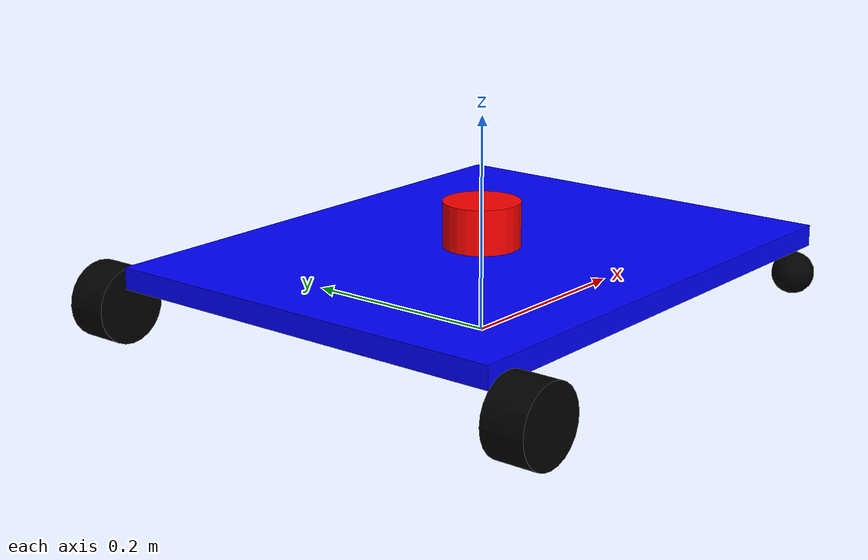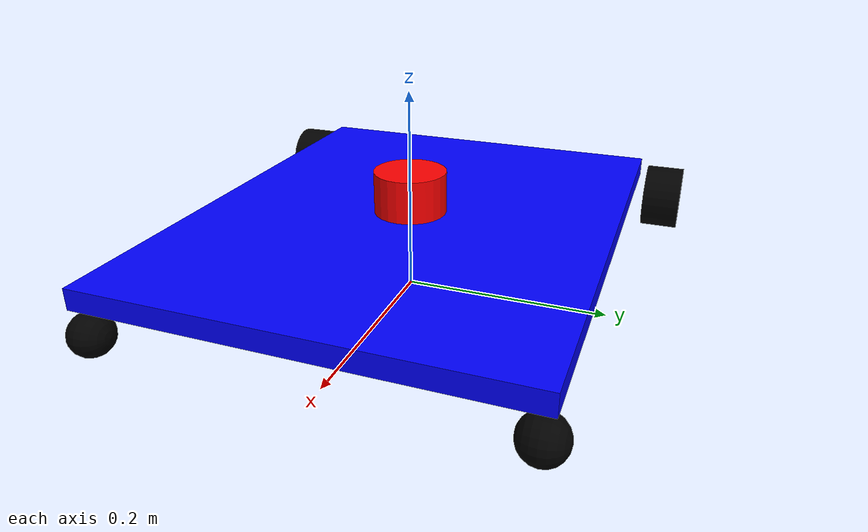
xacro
<?xml version="1.0"?>
<robot xmlns:xacro="http://www.ros.org/wiki/xacro"  name="Diff_Bot">
    <!-- Base Plate -->
    <xacro:include filename="inertial_macros.xacro"/>

    <!-- Base Plate -->
    <xacro:include filename="base.xacro"/>

    <!-- Caster -->
    <xacro:include filename="caster.xacro"/>

    <!-- Wheels -->
    <xacro:include filename="wheels.xacro"/>

    <!-- LIDAR -->
    <xacro:include filename="lidar.xacro"/>

    <!-- ROS Control -->

</robot>

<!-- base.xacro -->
<robot xmlns:xacro="http://www.ros.org/wiki/xacro">
  <!-- Variables -->
  <xacro:property name="base_length" value="0.498"/>
  <xacro:property name="base_width" value="0.4"/>
  <xacro:property name="base_height" value="0.02"/>
  <xacro:property name="top_length" value="0.246"/>
  <xacro:property name="top_width" value="0.361"/>
  <xacro:property name="top_height" value="0.03"/>
  <xacro:property name="clearance" value="0.05"/>

  <!-- Base Link -->
  <link name="base_link"/>

  <!-- Base Plate -->
  <joint name="base_joint" type="fixed">
    <origin xyz="0.0 0.0 ${clearance + base_height + 0.01}"/>  <!-- 1cm provided for no clipping -->
    <parent link="base_link"/>
    <child link="base_plate"/>
  </joint>

  <link name="base_plate">
    <inertial>
      <origin xyz="0.0 0.0 -${base_height/2}"/>
      <mass value="0.0"/>
      <inertia ixx="0.0" ixy="0.0" ixz="0.0" iyy="0.0" iyz="0.0" izz="0.0"/>
    </inertial>
    <visual>
      <origin xyz="0.0 0.0 -${base_height/2}"/>
      <geometry>
        <box size="${base_length} ${base_width} ${base_height}"/>
      </geometry>
      <material name="blue">
        <color rgba="0.0 0.0 1.0 1.0"/>
      </material>
    </visual>
    <collision>
      <origin xyz="0.0 0.0 -${base_height/2}"/>
      <geometry>
        <box size="${base_length} ${base_width} ${base_height}"/>
      </geometry>
    </collision>
    <xacro:inertial_box mass="1.0" x="${base_length}" y="${base_width}" z="${base_height}">
      <origin xyz="0.0 0.0 -${base_height/2}"/>
    </xacro:inertial_box>
  </link>

  <!-- Top Plate -->

</robot>

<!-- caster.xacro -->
<robot xmlns:xacro="http://www.ros.org/wiki/xacro">
    <!-- Variables -->
    <xacro:property name="caster_radius" value="0.02" />
    <xacro:property name="caster_gap" value="0.046" />

    <!-- Caster Macro (sphere) -->
    <xacro:macro name="caster" params="prefix parent x y z z_sign">
        <joint name="${prefix}_joint" type="fixed">
            <parent link="${parent}"></parent>
            <child link="${prefix}_caster"></child>
            <origin xyz="${x} ${y} ${z}" rpy="${pi/2 * z_sign} 0 0" />
            <axis xyz="0 0 ${-1 * z_sign}" />
        </joint>

        <link name="${prefix}_caster">
            <visual>
                <geometry>
                    <sphere radius="${caster_radius}"/>
                </geometry>
                <material name="black">
                    <color rgba="0 0 0 1"/>
                </material>
            </visual>
            <collision>
                <geometry>
                    <sphere radius="${caster_radius}"/>
                </geometry>
            </collision>
            <xacro:inertial_sphere mass="0.1" radius="${caster_radius}">
             <origin xyz="0 0 0"/>
            </xacro:inertial_sphere>
        </link>
    </xacro:macro>

    <!-- Casters (two at the bottom) -->
    <xacro:caster prefix="top_left" parent="base_plate" x="${base_length/2 - 0.01}" y="${base_width/2 - 0.01 }" z="${-caster_gap}" z_sign="-1"/>
    <xacro:caster prefix="top_right" parent="base_plate" x="${base_length/2 - 0.01}" y="-${base_width/2 - 0.01 }" z="${-caster_gap}" z_sign="1"/>
</robot>

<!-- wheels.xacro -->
<robot xmlns:xacro="http://www.ros.org/wiki/xacro">
  <!-- Variables -->
  <xacro:property name="wheel_radius" value="0.035" />
  <xacro:property name="wheel_width" value="0.04" />
  <xacro:property name="wheel_gap" value="0.009" />

  <!-- Wheel Macro -->
  <xacro:macro name="wheel" params="prefix parent x y z z_sign">
    <joint name="${prefix}_joint" type="continuous">
      <parent link="${parent}"></parent>
      <child link="${prefix}_wheel"></child>
      <origin xyz="${x} ${y} ${z}" rpy="${z_sign * pi/2} 0 0" />
      <axis xyz="0 0 ${-1 * z_sign}" />
    </joint>

    <link name="${prefix}_wheel">
      <visual>
        <geometry>
          <cylinder radius="${wheel_radius}" length="${wheel_width}"/>
        </geometry>
        <material name="black">
          <color rgba="0 0 0 1"/>
        </material>
      </visual>
      <collision>
        <geometry>
          <cylinder radius="${wheel_radius}" length="${wheel_width}"/>
        </geometry>
      </collision>
      <xacro:inertial_cylinder mass="0.1" radius="${wheel_radius}" length="${wheel_width}">
        <origin xyz="0 0 0"/>
      </xacro:inertial_cylinder>
    </link>
  </xacro:macro>

  <!-- Wheels -->
  <xacro:wheel prefix="bottom_left" parent="base_plate" x="-${base_length/2 - 0.013}" y="${base_width/2 + wheel_gap + wheel_width/2}" z="-0.04" z_sign="-1"/>
  <xacro:wheel prefix="bottom_right" parent="base_plate" x="-${base_length/2 - 0.013}" y="-${base_width/2 + wheel_gap + wheel_width/2}" z="-0.04" z_sign="1"/>
</robot>

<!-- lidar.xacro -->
<robot xmlns:xacro="http://www.ros.org/wiki/xacro">
  <!-- Variables -->
  <xacro:property name="lidar_height" value="0.042" />
  <xacro:property name="lidar_radius" value="0.036" />

  <!-- Links -->
  <joint name="lidar_joint" type="fixed">
    <origin xyz="0 0 ${lidar_height/2}"/>
    <parent link="base_plate"/>
    <child link="lidar_link"/>
  </joint>

  <link name="lidar_link">
    <visual>
      <origin xyz="0 0 0"/>
      <geometry>
        <cylinder length="${lidar_height}" radius="${lidar_radius}"/>
      </geometry>
      <material name="red">
        <color rgba="1 0 0 1"/>
      </material>
    </visual>
    <collision>
      <origin xyz="0 0 0"/>
      <geometry>
        <cylinder length="${lidar_height}" radius="${lidar_radius}"/>
      </geometry>
    </collision>
    <xacro:inertial_cylinder mass="0.1" radius="${lidar_radius}" length="${lidar_height}">
      <origin xyz="0 0 ${lidar_height/2}"/>
    </xacro:inertial_cylinder>
  </link>
  <gazebo reference="lidar_link">
    <material>Gazebo/Red</material>
    <sensor type="ray" name="lidar_sensor">
      <pose>0 0 0 0 0 0</pose>
      <visualize>true</visualize>
      <update_rate>10</update_rate>
      <ray>
        <scan>
          <horizontal>
            <samples>360</samples>
            <resolution>1</resolution>
            <min_angle>-${pi}</min_angle>
            <max_angle>${pi}</max_angle>
          </horizontal>
          <range>
            <min>0.12</min>
            <max>6</max>
          </range>
        </scan>
        <range>
          <min>0.3</min>
          <max>12</max>
          <resolution>0.01</resolution>
        </range>
        <noise>
          <type>gaussian</type>
          <mean>0.0</mean>
          <stddev>0.01</stddev>
        </noise>
      </ray>
      <plugin name="gazebo_ros_lidar" filename="libgazebo_ros_ray_sensor.so">
        <ros>
          <argument> ~/out:=scan </argument>
        </ros>
        <output_type>sensor_msgs/LaserScan</output_type>
        <frame_name>lidar_link</frame_name>
      </plugin>
    </sensor>
  </gazebo>
</robot>
